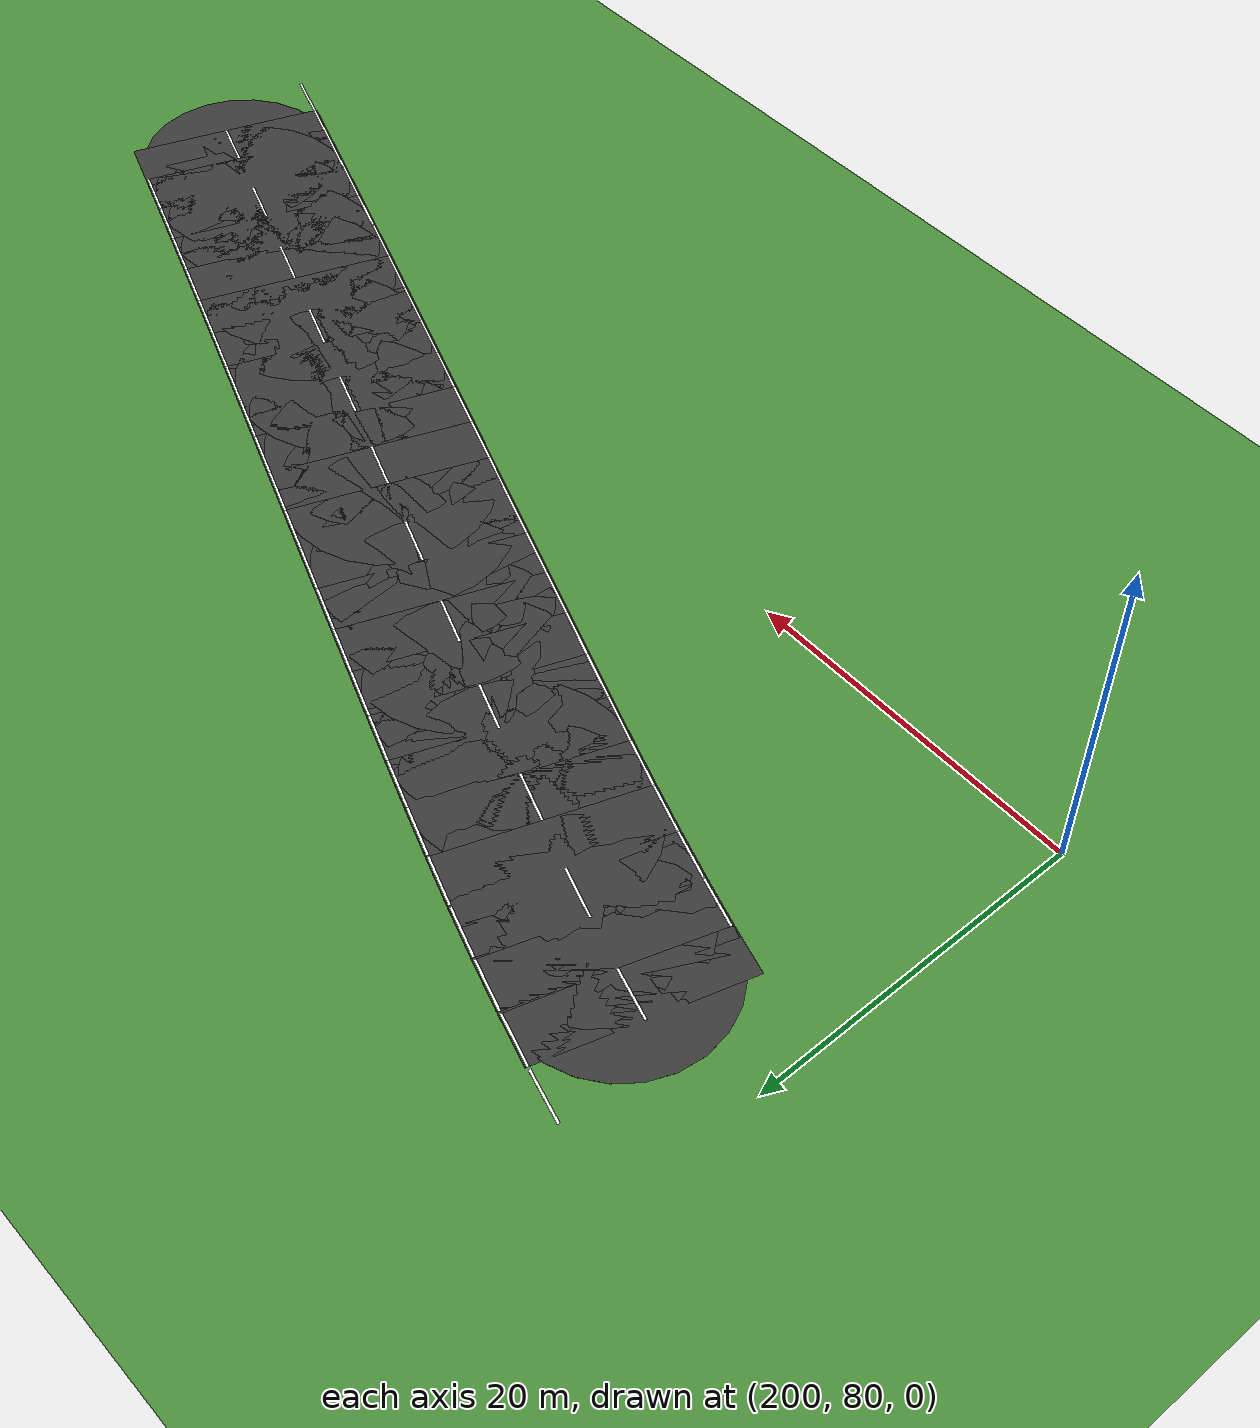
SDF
<sdf version="1.6">
 <world name="sem_silesia_ring_2026">
  <model name="ground_plane">
   <static>true</static>
   <link name="link">
    <collision name="collision">
     <geometry><plane><normal>0 0 1</normal><size>1200 1200</size></plane></geometry>
     <surface><friction><ode><mu>0.6</mu><mu2>0.6</mu2></ode></friction></surface>
    </collision>
    <visual name="visual">
     <geometry><plane><normal>0 0 1</normal><size>1200 1200</size></plane></geometry>
     <material><ambient>0.28 0.55 0.22 1</ambient><diffuse>0.28 0.55 0.22 1</diffuse></material>
    </visual>
   </link>
  </model>
  <model name="wl_L_s95">
   <static>true</static>
   <pose>206.1516 107.2972 0.0070 0 0 -0.2600</pose>
   <link name="link">
    <visual name="v">
     <geometry><box><size>3.0025 0.1500 0.0080</size></box></geometry>
     <material><ambient>0.95 0.95 0.95 1</ambient><diffuse>0.95 0.95 0.95 1</diffuse></material>
    </visual>
   </link>
  </model>
  <model name="road_s96">
   <static>true</static>
   <pose>207.5403 100.8396 0.0030 0 0 -0.2824</pose>
   <link name="link">
    <visual name="v">
     <geometry><box><size>3.0025 12.0000 0.0060</size></box></geometry>
     <material><ambient>0.22 0.22 0.22 1</ambient><diffuse>0.22 0.22 0.22 1</diffuse></material>
    </visual>
    <collision name="c">
     <geometry><box><size>3.0025 12.0000 0.0060</size></box></geometry>
     <surface><friction><ode><mu>0.9</mu><mu2>0.9</mu2></ode></friction></surface>
    </collision>
   </link>
  </model>
  <model name="wl_L_s96">
   <static>true</static>
   <pose>209.1703 106.4579 0.0070 0 0 -0.2824</pose>
   <link name="link">
    <visual name="v">
     <geometry><box><size>3.0025 0.1500 0.0080</size></box></geometry>
     <material><ambient>0.95 0.95 0.95 1</ambient><diffuse>0.95 0.95 0.95 1</diffuse></material>
    </visual>
   </link>
  </model>
  <model name="cd_s96">
   <static>true</static>
   <pose>207.5403 100.8396 0.0070 0 0 -0.2824</pose>
   <link name="link">
    <visual name="v">
     <geometry><box><size>3.0025 0.1500 0.0080</size></box></geometry>
     <material><ambient>0.95 0.95 0.95 1</ambient><diffuse>0.95 0.95 0.95 1</diffuse></material>
    </visual>
   </link>
  </model>
  <model name="road_s97">
   <static>true</static>
   <pose>210.4154 99.9749 0.0030 0 0 -0.3019</pose>
   <link name="link">
    <visual name="v">
     <geometry><box><size>3.0025 12.0000 0.0060</size></box></geometry>
     <material><ambient>0.22 0.22 0.22 1</ambient><diffuse>0.22 0.22 0.22 1</diffuse></material>
    </visual>
    <collision name="c">
     <geometry><box><size>3.0025 12.0000 0.0060</size></box></geometry>
     <surface><friction><ode><mu>0.9</mu><mu2>0.9</mu2></ode></friction></surface>
    </collision>
   </link>
  </model>
  <model name="road_jnt97">
   <static>true</static>
   <pose>208.9821 100.4213 0.0030 0 0 0</pose>
   <link name="link">
    <visual name="v">
     <geometry><cylinder><radius>6.0000</radius><length>0.0060</length></cylinder></geometry>
     <material><ambient>0.22 0.22 0.22 1</ambient><diffuse>0.22 0.22 0.22 1</diffuse></material>
    </visual>
    <collision name="c">
     <geometry><cylinder><radius>6.0000</radius><length>0.0060</length></cylinder></geometry>
     <surface><friction><ode><mu>0.9</mu><mu2>0.9</mu2></ode></friction></surface>
    </collision>
   </link>
  </model>
  <model name="wl_L_s97">
   <static>true</static>
   <pose>212.1547 105.5604 0.0070 0 0 -0.3019</pose>
   <link name="link">
    <visual name="v">
     <geometry><box><size>3.0025 0.1500 0.0080</size></box></geometry>
     <material><ambient>0.95 0.95 0.95 1</ambient><diffuse>0.95 0.95 0.95 1</diffuse></material>
    </visual>
   </link>
  </model>
  <model name="wl_R_s97">
   <static>true</static>
   <pose>208.6762 94.3894 0.0070 0 0 -0.3019</pose>
   <link name="link">
    <visual name="v">
     <geometry><box><size>3.0025 0.1500 0.0080</size></box></geometry>
     <material><ambient>0.95 0.95 0.95 1</ambient><diffuse>0.95 0.95 0.95 1</diffuse></material>
    </visual>
   </link>
  </model>
  <model name="road_s98">
   <static>true</static>
   <pose>213.2746 99.0587 0.0030 0 0 -0.3183</pose>
   <link name="link">
    <visual name="v">
     <geometry><box><size>3.0025 12.0000 0.0060</size></box></geometry>
     <material><ambient>0.22 0.22 0.22 1</ambient><diffuse>0.22 0.22 0.22 1</diffuse></material>
    </visual>
    <collision name="c">
     <geometry><box><size>3.0025 12.0000 0.0060</size></box></geometry>
     <surface><friction><ode><mu>0.9</mu><mu2>0.9</mu2></ode></friction></surface>
    </collision>
   </link>
  </model>
  <model name="road_jnt98">
   <static>true</static>
   <pose>211.8488 99.5286 0.0030 0 0 0</pose>
   <link name="link">
    <visual name="v">
     <geometry><cylinder><radius>6.0000</radius><length>0.0060</length></cylinder></geometry>
     <material><ambient>0.22 0.22 0.22 1</ambient><diffuse>0.22 0.22 0.22 1</diffuse></material>
    </visual>
    <collision name="c">
     <geometry><cylinder><radius>6.0000</radius><length>0.0060</length></cylinder></geometry>
     <surface><friction><ode><mu>0.9</mu><mu2>0.9</mu2></ode></friction></surface>
    </collision>
   </link>
  </model>
  <model name="wl_L_s98">
   <static>true</static>
   <pose>215.1056 104.6148 0.0070 0 0 -0.3183</pose>
   <link name="link">
    <visual name="v">
     <geometry><box><size>3.0025 0.1500 0.0080</size></box></geometry>
     <material><ambient>0.95 0.95 0.95 1</ambient><diffuse>0.95 0.95 0.95 1</diffuse></material>
    </visual>
   </link>
  </model>
  <model name="wl_R_s98">
   <static>true</static>
   <pose>211.4436 93.5026 0.0070 0 0 -0.3183</pose>
   <link name="link">
    <visual name="v">
     <geometry><box><size>3.0025 0.1500 0.0080</size></box></geometry>
     <material><ambient>0.95 0.95 0.95 1</ambient><diffuse>0.95 0.95 0.95 1</diffuse></material>
    </visual>
   </link>
  </model>
  <model name="cd_s98">
   <static>true</static>
   <pose>213.2746 99.0587 0.0070 0 0 -0.3183</pose>
   <link name="link">
    <visual name="v">
     <geometry><box><size>3.0025 0.1500 0.0080</size></box></geometry>
     <material><ambient>0.95 0.95 0.95 1</ambient><diffuse>0.95 0.95 0.95 1</diffuse></material>
    </visual>
   </link>
  </model>
  <model name="road_s99">
   <static>true</static>
   <pose>216.1199 98.1000 0.0030 0 0 -0.3317</pose>
   <link name="link">
    <visual name="v">
     <geometry><box><size>3.0025 12.0000 0.0060</size></box></geometry>
     <material><ambient>0.22 0.22 0.22 1</ambient><diffuse>0.22 0.22 0.22 1</diffuse></material>
    </visual>
    <collision name="c">
     <geometry><box><size>3.0025 12.0000 0.0060</size></box></geometry>
     <surface><friction><ode><mu>0.9</mu><mu2>0.9</mu2></ode></friction></surface>
    </collision>
   </link>
  </model>
  <model name="road_jnt99">
   <static>true</static>
   <pose>214.7004 98.5888 0.0030 0 0 0</pose>
   <link name="link">
    <visual name="v">
     <geometry><cylinder><radius>6.0000</radius><length>0.0060</length></cylinder></geometry>
     <material><ambient>0.22 0.22 0.22 1</ambient><diffuse>0.22 0.22 0.22 1</diffuse></material>
    </visual>
    <collision name="c">
     <geometry><cylinder><radius>6.0000</radius><length>0.0060</length></cylinder></geometry>
     <surface><friction><ode><mu>0.9</mu><mu2>0.9</mu2></ode></friction></surface>
    </collision>
   </link>
  </model>
  <model name="wl_L_s99">
   <static>true</static>
   <pose>218.0248 103.6311 0.0070 0 0 -0.3317</pose>
   <link name="link">
    <visual name="v">
     <geometry><box><size>3.0025 0.1500 0.0080</size></box></geometry>
     <material><ambient>0.95 0.95 0.95 1</ambient><diffuse>0.95 0.95 0.95 1</diffuse></material>
    </visual>
   </link>
  </model>
  <model name="wl_R_s99">
   <static>true</static>
   <pose>214.2149 92.5688 0.0070 0 0 -0.3317</pose>
   <link name="link">
    <visual name="v">
     <geometry><box><size>3.0025 0.1500 0.0080</size></box></geometry>
     <material><ambient>0.95 0.95 0.95 1</ambient><diffuse>0.95 0.95 0.95 1</diffuse></material>
    </visual>
   </link>
  </model>
  <model name="road_s100">
   <static>true</static>
   <pose>218.9537 97.1079 0.0030 0 0 -0.3418</pose>
   <link name="link">
    <visual name="v">
     <geometry><box><size>3.0025 12.0000 0.0060</size></box></geometry>
     <material><ambient>0.22 0.22 0.22 1</ambient><diffuse>0.22 0.22 0.22 1</diffuse></material>
    </visual>
    <collision name="c">
     <geometry><box><size>3.0025 12.0000 0.0060</size></box></geometry>
     <surface><friction><ode><mu>0.9</mu><mu2>0.9</mu2></ode></friction></surface>
    </collision>
   </link>
  </model>
  <model name="road_jnt100">
   <static>true</static>
   <pose>217.5393 97.6111 0.0030 0 0 0</pose>
   <link name="link">
    <visual name="v">
     <geometry><cylinder><radius>6.0000</radius><length>0.0060</length></cylinder></geometry>
     <material><ambient>0.22 0.22 0.22 1</ambient><diffuse>0.22 0.22 0.22 1</diffuse></material>
    </visual>
    <collision name="c">
     <geometry><cylinder><radius>6.0000</radius><length>0.0060</length></cylinder></geometry>
     <surface><friction><ode><mu>0.9</mu><mu2>0.9</mu2></ode></friction></surface>
    </collision>
   </link>
  </model>
  <model name="wl_L_s100">
   <static>true</static>
   <pose>220.9147 102.6194 0.0070 0 0 -0.3418</pose>
   <link name="link">
    <visual name="v">
     <geometry><box><size>3.0025 0.1500 0.0080</size></box></geometry>
     <material><ambient>0.95 0.95 0.95 1</ambient><diffuse>0.95 0.95 0.95 1</diffuse></material>
    </visual>
   </link>
  </model>
  <model name="wl_R_s100">
   <static>true</static>
   <pose>216.9927 91.5964 0.0070 0 0 -0.3418</pose>
   <link name="link">
    <visual name="v">
     <geometry><box><size>3.0025 0.1500 0.0080</size></box></geometry>
     <material><ambient>0.95 0.95 0.95 1</ambient><diffuse>0.95 0.95 0.95 1</diffuse></material>
    </visual>
   </link>
  </model>
  <model name="cd_s100">
   <static>true</static>
   <pose>218.9537 97.1079 0.0070 0 0 -0.3418</pose>
   <link name="link">
    <visual name="v">
     <geometry><box><size>3.0025 0.1500 0.0080</size></box></geometry>
     <material><ambient>0.95 0.95 0.95 1</ambient><diffuse>0.95 0.95 0.95 1</diffuse></material>
    </visual>
   </link>
  </model>
  <model name="road_s101">
   <static>true</static>
   <pose>221.7790 96.0916 0.0030 0 0 -0.3488</pose>
   <link name="link">
    <visual name="v">
     <geometry><box><size>3.0025 12.0000 0.0060</size></box></geometry>
     <material><ambient>0.22 0.22 0.22 1</ambient><diffuse>0.22 0.22 0.22 1</diffuse></material>
    </visual>
    <collision name="c">
     <geometry><box><size>3.0025 12.0000 0.0060</size></box></geometry>
     <surface><friction><ode><mu>0.9</mu><mu2>0.9</mu2></ode></friction></surface>
    </collision>
   </link>
  </model>
  <model name="road_jnt101">
   <static>true</static>
   <pose>220.3681 96.6047 0.0030 0 0 0</pose>
   <link name="link">
    <visual name="v">
     <geometry><cylinder><radius>6.0000</radius><length>0.0060</length></cylinder></geometry>
     <material><ambient>0.22 0.22 0.22 1</ambient><diffuse>0.22 0.22 0.22 1</diffuse></material>
    </visual>
    <collision name="c">
     <geometry><cylinder><radius>6.0000</radius><length>0.0060</length></cylinder></geometry>
     <surface><friction><ode><mu>0.9</mu><mu2>0.9</mu2></ode></friction></surface>
    </collision>
   </link>
  </model>
  <model name="wl_L_s101">
   <static>true</static>
   <pose>223.7781 101.5894 0.0070 0 0 -0.3488</pose>
   <link name="link">
    <visual name="v">
     <geometry><box><size>3.0025 0.1500 0.0080</size></box></geometry>
     <material><ambient>0.95 0.95 0.95 1</ambient><diffuse>0.95 0.95 0.95 1</diffuse></material>
    </visual>
   </link>
  </model>
  <model name="wl_R_s101">
   <static>true</static>
   <pose>219.7799 90.5938 0.0070 0 0 -0.3488</pose>
   <link name="link">
    <visual name="v">
     <geometry><box><size>3.0025 0.1500 0.0080</size></box></geometry>
     <material><ambient>0.95 0.95 0.95 1</ambient><diffuse>0.95 0.95 0.95 1</diffuse></material>
    </visual>
   </link>
  </model>
  <model name="road_s102">
   <static>true</static>
   <pose>224.5989 95.0603 0.0030 0 0 -0.3525</pose>
   <link name="link">
    <visual name="v">
     <geometry><box><size>3.0025 12.0000 0.0060</size></box></geometry>
     <material><ambient>0.22 0.22 0.22 1</ambient><diffuse>0.22 0.22 0.22 1</diffuse></material>
    </visual>
    <collision name="c">
     <geometry><box><size>3.0025 12.0000 0.0060</size></box></geometry>
     <surface><friction><ode><mu>0.9</mu><mu2>0.9</mu2></ode></friction></surface>
    </collision>
   </link>
  </model>
  <model name="road_jnt102">
   <static>true</static>
   <pose>223.1899 95.5786 0.0030 0 0 0</pose>
   <link name="link">
    <visual name="v">
     <geometry><cylinder><radius>6.0000</radius><length>0.0060</length></cylinder></geometry>
     <material><ambient>0.22 0.22 0.22 1</ambient><diffuse>0.22 0.22 0.22 1</diffuse></material>
    </visual>
    <collision name="c">
     <geometry><cylinder><radius>6.0000</radius><length>0.0060</length></cylinder></geometry>
     <surface><friction><ode><mu>0.9</mu><mu2>0.9</mu2></ode></friction></surface>
    </collision>
   </link>
  </model>
  <model name="wl_L_s102">
   <static>true</static>
   <pose>226.6184 100.5507 0.0070 0 0 -0.3525</pose>
   <link name="link">
    <visual name="v">
     <geometry><box><size>3.0025 0.1500 0.0080</size></box></geometry>
     <material><ambient>0.95 0.95 0.95 1</ambient><diffuse>0.95 0.95 0.95 1</diffuse></material>
    </visual>
   </link>
  </model>
  <model name="wl_R_s102">
   <static>true</static>
   <pose>222.5794 89.5700 0.0070 0 0 -0.3525</pose>
   <link name="link">
    <visual name="v">
     <geometry><box><size>3.0025 0.1500 0.0080</size></box></geometry>
     <material><ambient>0.95 0.95 0.95 1</ambient><diffuse>0.95 0.95 0.95 1</diffuse></material>
    </visual>
   </link>
  </model>
  <model name="cd_s102">
   <static>true</static>
   <pose>224.5989 95.0603 0.0070 0 0 -0.3525</pose>
   <link name="link">
    <visual name="v">
     <geometry><box><size>3.0025 0.1500 0.0080</size></box></geometry>
     <material><ambient>0.95 0.95 0.95 1</ambient><diffuse>0.95 0.95 0.95 1</diffuse></material>
    </visual>
   </link>
  </model>
  <model name="road_s103">
   <static>true</static>
   <pose>227.4161 94.0218 0.0030 0 0 -0.3539</pose>
   <link name="link">
    <visual name="v">
     <geometry><box><size>3.0025 12.0000 0.0060</size></box></geometry>
     <material><ambient>0.22 0.22 0.22 1</ambient><diffuse>0.22 0.22 0.22 1</diffuse></material>
    </visual>
    <collision name="c">
     <geometry><box><size>3.0025 12.0000 0.0060</size></box></geometry>
     <surface><friction><ode><mu>0.9</mu><mu2>0.9</mu2></ode></friction></surface>
    </collision>
   </link>
  </model>
  <model name="road_jnt103">
   <static>true</static>
   <pose>226.0078 94.5421 0.0030 0 0 0</pose>
   <link name="link">
    <visual name="v">
     <geometry><cylinder><radius>6.0000</radius><length>0.0060</length></cylinder></geometry>
     <material><ambient>0.22 0.22 0.22 1</ambient><diffuse>0.22 0.22 0.22 1</diffuse></material>
    </visual>
    <collision name="c">
     <geometry><cylinder><radius>6.0000</radius><length>0.0060</length></cylinder></geometry>
     <surface><friction><ode><mu>0.9</mu><mu2>0.9</mu2></ode></friction></surface>
    </collision>
   </link>
  </model>
  <model name="wl_L_s103">
   <static>true</static>
   <pose>229.4434 99.5093 0.0070 0 0 -0.3539</pose>
   <link name="link">
    <visual name="v">
     <geometry><box><size>3.0025 0.1500 0.0080</size></box></geometry>
     <material><ambient>0.95 0.95 0.95 1</ambient><diffuse>0.95 0.95 0.95 1</diffuse></material>
    </visual>
   </link>
  </model>
  <model name="wl_R_s103">
   <static>true</static>
   <pose>225.3887 88.5343 0.0070 0 0 -0.3539</pose>
   <link name="link">
    <visual name="v">
     <geometry><box><size>3.0025 0.1500 0.0080</size></box></geometry>
     <material><ambient>0.95 0.95 0.95 1</ambient><diffuse>0.95 0.95 0.95 1</diffuse></material>
    </visual>
   </link>
  </model>
  <model name="road_s104">
   <static>true</static>
   <pose>230.2320 92.9799 0.0030 0 0 -0.3549</pose>
   <link name="link">
    <visual name="v">
     <geometry><box><size>3.0025 12.0000 0.0060</size></box></geometry>
     <material><ambient>0.22 0.22 0.22 1</ambient><diffuse>0.22 0.22 0.22 1</diffuse></material>
    </visual>
    <collision name="c">
     <geometry><box><size>3.0025 12.0000 0.0060</size></box></geometry>
     <surface><friction><ode><mu>0.9</mu><mu2>0.9</mu2></ode></friction></surface>
    </collision>
   </link>
  </model>
  <model name="road_jnt104">
   <static>true</static>
   <pose>228.8243 93.5015 0.0030 0 0 0</pose>
   <link name="link">
    <visual name="v">
     <geometry><cylinder><radius>6.0000</radius><length>0.0060</length></cylinder></geometry>
     <material><ambient>0.22 0.22 0.22 1</ambient><diffuse>0.22 0.22 0.22 1</diffuse></material>
    </visual>
    <collision name="c">
     <geometry><cylinder><radius>6.0000</radius><length>0.0060</length></cylinder></geometry>
     <surface><friction><ode><mu>0.9</mu><mu2>0.9</mu2></ode></friction></surface>
    </collision>
   </link>
  </model>
  <model name="wl_L_s104">
   <static>true</static>
   <pose>232.2647 98.4654 0.0070 0 0 -0.3549</pose>
   <link name="link">
    <visual name="v">
     <geometry><box><size>3.0025 0.1500 0.0080</size></box></geometry>
     <material><ambient>0.95 0.95 0.95 1</ambient><diffuse>0.95 0.95 0.95 1</diffuse></material>
    </visual>
   </link>
  </model>
  <model name="wl_R_s104">
   <static>true</static>
   <pose>228.1994 87.4944 0.0070 0 0 -0.3549</pose>
   <link name="link">
    <visual name="v">
     <geometry><box><size>3.0025 0.1500 0.0080</size></box></geometry>
     <material><ambient>0.95 0.95 0.95 1</ambient><diffuse>0.95 0.95 0.95 1</diffuse></material>
    </visual>
   </link>
  </model>
  <model name="cd_s104">
   <static>true</static>
   <pose>230.2320 92.9799 0.0070 0 0 -0.3549</pose>
   <link name="link">
    <visual name="v">
     <geometry><box><size>3.0025 0.1500 0.0080</size></box></geometry>
     <material><ambient>0.95 0.95 0.95 1</ambient><diffuse>0.95 0.95 0.95 1</diffuse></material>
    </visual>
   </link>
  </model>
  <model name="road_s105">
   <static>true</static>
   <pose>233.0471 91.9356 0.0030 0 0 -0.3556</pose>
   <link name="link">
    <visual name="v">
     <geometry><box><size>3.0025 12.0000 0.0060</size></box></geometry>
     <material><ambient>0.22 0.22 0.22 1</ambient><diffuse>0.22 0.22 0.22 1</diffuse></material>
    </visual>
    <collision name="c">
     <geometry><box><size>3.0025 12.0000 0.0060</size></box></geometry>
     <surface><friction><ode><mu>0.9</mu><mu2>0.9</mu2></ode></friction></surface>
    </collision>
   </link>
  </model>
  <model name="road_jnt105">
   <static>true</static>
   <pose>231.6398 92.4583 0.0030 0 0 0</pose>
   <link name="link">
    <visual name="v">
     <geometry><cylinder><radius>6.0000</radius><length>0.0060</length></cylinder></geometry>
     <material><ambient>0.22 0.22 0.22 1</ambient><diffuse>0.22 0.22 0.22 1</diffuse></material>
    </visual>
    <collision name="c">
     <geometry><cylinder><radius>6.0000</radius><length>0.0060</length></cylinder></geometry>
     <surface><friction><ode><mu>0.9</mu><mu2>0.9</mu2></ode></friction></surface>
    </collision>
   </link>
  </model>
  <model name="wl_L_s105">
   <static>true</static>
   <pose>235.0837 97.4197 0.0070 0 0 -0.3556</pose>
   <link name="link">
    <visual name="v">
     <geometry><box><size>3.0025 0.1500 0.0080</size></box></geometry>
     <material><ambient>0.95 0.95 0.95 1</ambient><diffuse>0.95 0.95 0.95 1</diffuse></material>
    </visual>
   </link>
  </model>
  <model name="wl_R_s105">
   <static>true</static>
   <pose>231.0106 86.4516 0.0070 0 0 -0.3556</pose>
   <link name="link">
    <visual name="v">
     <geometry><box><size>3.0025 0.1500 0.0080</size></box></geometry>
     <material><ambient>0.95 0.95 0.95 1</ambient><diffuse>0.95 0.95 0.95 1</diffuse></material>
    </visual>
   </link>
  </model>
  <model name="road_s106">
   <static>true</static>
   <pose>235.8616 90.8897 0.0030 0 0 -0.3560</pose>
   <link name="link">
    <visual name="v">
     <geometry><box><size>3.0025 12.0000 0.0060</size></box></geometry>
     <material><ambient>0.22 0.22 0.22 1</ambient><diffuse>0.22 0.22 0.22 1</diffuse></material>
    </visual>
    <collision name="c">
     <geometry><box><size>3.0025 12.0000 0.0060</size></box></geometry>
     <surface><friction><ode><mu>0.9</mu><mu2>0.9</mu2></ode></friction></surface>
    </collision>
   </link>
  </model>
  <model name="road_jnt106">
   <static>true</static>
   <pose>234.4545 91.4130 0.0030 0 0 0</pose>
   <link name="link">
    <visual name="v">
     <geometry><cylinder><radius>6.0000</radius><length>0.0060</length></cylinder></geometry>
     <material><ambient>0.22 0.22 0.22 1</ambient><diffuse>0.22 0.22 0.22 1</diffuse></material>
    </visual>
    <collision name="c">
     <geometry><cylinder><radius>6.0000</radius><length>0.0060</length></cylinder></geometry>
     <surface><friction><ode><mu>0.9</mu><mu2>0.9</mu2></ode></friction></surface>
    </collision>
   </link>
  </model>
  <model name="wl_L_s106">
   <static>true</static>
   <pose>237.9007 96.3728 0.0070 0 0 -0.3560</pose>
   <link name="link">
    <visual name="v">
     <geometry><box><size>3.0025 0.1500 0.0080</size></box></geometry>
     <material><ambient>0.95 0.95 0.95 1</ambient><diffuse>0.95 0.95 0.95 1</diffuse></material>
    </visual>
   </link>
  </model>
  <model name="wl_R_s106">
   <static>true</static>
   <pose>233.8225 85.4066 0.0070 0 0 -0.3560</pose>
   <link name="link">
    <visual name="v">
     <geometry><box><size>3.0025 0.1500 0.0080</size></box></geometry>
     <material><ambient>0.95 0.95 0.95 1</ambient><diffuse>0.95 0.95 0.95 1</diffuse></material>
    </visual>
   </link>
  </model>
  <model name="cd_s106">
   <static>true</static>
   <pose>235.8616 90.8897 0.0070 0 0 -0.3560</pose>
   <link name="link">
    <visual name="v">
     <geometry><box><size>3.0025 0.1500 0.0080</size></box></geometry>
     <material><ambient>0.95 0.95 0.95 1</ambient><diffuse>0.95 0.95 0.95 1</diffuse></material>
    </visual>
   </link>
  </model>
  <model name="road_s107">
   <static>true</static>
   <pose>238.6757 89.8428 0.0030 0 0 -0.3563</pose>
   <link name="link">
    <visual name="v">
     <geometry><box><size>3.0025 12.0000 0.0060</size></box></geometry>
     <material><ambient>0.22 0.22 0.22 1</ambient><diffuse>0.22 0.22 0.22 1</diffuse></material>
    </visual>
    <collision name="c">
     <geometry><box><size>3.0025 12.0000 0.0060</size></box></geometry>
     <surface><friction><ode><mu>0.9</mu><mu2>0.9</mu2></ode></friction></surface>
    </collision>
   </link>
  </model>
  <model name="road_jnt107">
   <static>true</static>
   <pose>237.2687 90.3664 0.0030 0 0 0</pose>
   <link name="link">
    <visual name="v">
     <geometry><cylinder><radius>6.0000</radius><length>0.0060</length></cylinder></geometry>
     <material><ambient>0.22 0.22 0.22 1</ambient><diffuse>0.22 0.22 0.22 1</diffuse></material>
    </visual>
    <collision name="c">
     <geometry><cylinder><radius>6.0000</radius><length>0.0060</length></cylinder></geometry>
     <surface><friction><ode><mu>0.9</mu><mu2>0.9</mu2></ode></friction></surface>
    </collision>
   </link>
  </model>
  <model name="wl_L_s107">
   <static>true</static>
   <pose>240.7160 95.3255 0.0070 0 0 -0.3563</pose>
   <link name="link">
    <visual name="v">
     <geometry><box><size>3.0025 0.1500 0.0080</size></box></geometry>
     <material><ambient>0.95 0.95 0.95 1</ambient><diffuse>0.95 0.95 0.95 1</diffuse></material>
    </visual>
   </link>
  </model>
  <model name="wl_R_s107">
   <static>true</static>
   <pose>236.6354 84.3602 0.0070 0 0 -0.3563</pose>
   <link name="link">
    <visual name="v">
     <geometry><box><size>3.0025 0.1500 0.0080</size></box></geometry>
     <material><ambient>0.95 0.95 0.95 1</ambient><diffuse>0.95 0.95 0.95 1</diffuse></material>
    </visual>
   </link>
  </model>
  <model name="road_s108">
   <static>true</static>
   <pose>241.4898 88.7957 0.0030 0 0 -0.3562</pose>
   <link name="link">
    <visual name="v">
     <geometry><box><size>3.0025 12.0000 0.0060</size></box></geometry>
     <material><ambient>0.22 0.22 0.22 1</ambient><diffuse>0.22 0.22 0.22 1</diffuse></material>
    </visual>
    <collision name="c">
     <geometry><box><size>3.0025 12.0000 0.0060</size></box></geometry>
     <surface><friction><ode><mu>0.9</mu><mu2>0.9</mu2></ode></friction></surface>
    </collision>
   </link>
  </model>
  <model name="road_jnt108">
   <static>true</static>
   <pose>240.0827 89.3192 0.0030 0 0 0</pose>
   <link name="link">
    <visual name="v">
     <geometry><cylinder><radius>6.0000</radius><length>0.0060</length></cylinder></geometry>
     <material><ambient>0.22 0.22 0.22 1</ambient><diffuse>0.22 0.22 0.22 1</diffuse></material>
    </visual>
    <collision name="c">
     <geometry><cylinder><radius>6.0000</radius><length>0.0060</length></cylinder></geometry>
     <surface><friction><ode><mu>0.9</mu><mu2>0.9</mu2></ode></friction></surface>
    </collision>
   </link>
  </model>
  <model name="wl_L_s108">
   <static>true</static>
   <pose>243.5299 94.2784 0.0070 0 0 -0.3562</pose>
   <link name="link">
    <visual name="v">
     <geometry><box><size>3.0025 0.1500 0.0080</size></box></geometry>
     <material><ambient>0.95 0.95 0.95 1</ambient><diffuse>0.95 0.95 0.95 1</diffuse></material>
    </visual>
   </link>
  </model>
  <model name="wl_R_s108">
   <static>true</static>
   <pose>239.4496 83.3130 0.0070 0 0 -0.3562</pose>
   <link name="link">
    <visual name="v">
     <geometry><box><size>3.0025 0.1500 0.0080</size></box></geometry>
     <material><ambient>0.95 0.95 0.95 1</ambient><diffuse>0.95 0.95 0.95 1</diffuse></material>
    </visual>
   </link>
  </model>
  <model name="cd_s108">
   <static>true</static>
   <pose>241.4898 88.7957 0.0070 0 0 -0.3562</pose>
   <link name="link">
    <visual name="v">
     <geometry><box><size>3.0025 0.1500 0.0080</size></box></geometry>
     <material><ambient>0.95 0.95 0.95 1</ambient><diffuse>0.95 0.95 0.95 1</diffuse></material>
    </visual>
   </link>
  </model>
  <model name="road_s109">
   <static>true</static>
   <pose>244.3039 87.7489 0.0030 0 0 -0.3560</pose>
   <link name="link">
    <visual name="v">
     <geometry><box><size>3.0025 12.0000 0.0060</size></box></geometry>
     <material><ambient>0.22 0.22 0.22 1</ambient><diffuse>0.22 0.22 0.22 1</diffuse></material>
    </visual>
    <collision name="c">
     <geometry><box><size>3.0025 12.0000 0.0060</size></box></geometry>
     <surface><friction><ode><mu>0.9</mu><mu2>0.9</mu2></ode></friction></surface>
    </collision>
   </link>
  </model>
  <model name="road_jnt109">
   <static>true</static>
   <pose>242.8968 88.2721 0.0030 0 0 0</pose>
   <link name="link">
    <visual name="v">
     <geometry><cylinder><radius>6.0000</radius><length>0.0060</length></cylinder></geometry>
     <material><ambient>0.22 0.22 0.22 1</ambient><diffuse>0.22 0.22 0.22 1</diffuse></material>
    </visual>
    <collision name="c">
     <geometry><cylinder><radius>6.0000</radius><length>0.0060</length></cylinder></geometry>
     <surface><friction><ode><mu>0.9</mu><mu2>0.9</mu2></ode></friction></surface>
    </collision>
   </link>
  </model>
  <model name="wl_L_s109">
   <static>true</static>
   <pose>246.3426 93.2322 0.0070 0 0 -0.3560</pose>
   <link name="link">
    <visual name="v">
     <geometry><box><size>3.0025 0.1500 0.0080</size></box></geometry>
     <material><ambient>0.95 0.95 0.95 1</ambient><diffuse>0.95 0.95 0.95 1</diffuse></material>
    </visual>
   </link>
  </model>
  <model name="wl_R_s109">
   <static>true</static>
   <pose>242.2652 82.2657 0.0070 0 0 -0.3560</pose>
   <link name="link">
    <visual name="v">
     <geometry><box><size>3.0025 0.1500 0.0080</size></box></geometry>
     <material><ambient>0.95 0.95 0.95 1</ambient><diffuse>0.95 0.95 0.95 1</diffuse></material>
    </visual>
   </link>
  </model>
  <model name="road_s110">
   <static>true</static>
   <pose>247.1185 86.7033 0.0030 0 0 -0.3555</pose>
   <link name="link">
    <visual name="v">
     <geometry><box><size>3.0025 12.0000 0.0060</size></box></geometry>
     <material><ambient>0.22 0.22 0.22 1</ambient><diffuse>0.22 0.22 0.22 1</diffuse></material>
    </visual>
    <collision name="c">
     <geometry><box><size>3.0025 12.0000 0.0060</size></box></geometry>
     <surface><friction><ode><mu>0.9</mu><mu2>0.9</mu2></ode></friction></surface>
    </collision>
   </link>
  </model>
  <model name="road_jnt110">
   <static>true</static>
   <pose>245.7111 87.2257 0.0030 0 0 0</pose>
   <link name="link">
    <visual name="v">
     <geometry><cylinder><radius>6.0000</radius><length>0.0060</length></cylinder></geometry>
     <material><ambient>0.22 0.22 0.22 1</ambient><diffuse>0.22 0.22 0.22 1</diffuse></material>
    </visual>
    <collision name="c">
     <geometry><cylinder><radius>6.0000</radius><length>0.0060</length></cylinder></geometry>
     <surface><friction><ode><mu>0.9</mu><mu2>0.9</mu2></ode></friction></surface>
    </collision>
   </link>
  </model>
  <model name="wl_L_s110">
   <static>true</static>
   <pose>249.1544 92.1876 0.0070 0 0 -0.3555</pose>
   <link name="link">
    <visual name="v">
     <geometry><box><size>3.0025 0.1500 0.0080</size></box></geometry>
     <material><ambient>0.95 0.95 0.95 1</ambient><diffuse>0.95 0.95 0.95 1</diffuse></material>
    </visual>
   </link>
  </model>
  <model name="wl_R_s110">
   <static>true</static>
   <pose>245.0826 81.2190 0.0070 0 0 -0.3555</pose>
   <link name="link">
    <visual name="v">
     <geometry><box><size>3.0025 0.1500 0.0080</size></box></geometry>
     <material><ambient>0.95 0.95 0.95 1</ambient><diffuse>0.95 0.95 0.95 1</diffuse></material>
    </visual>
   </link>
  </model>
  <model name="cd_s110">
   <static>true</static>
   <pose>247.1185 86.7033 0.0070 0 0 -0.3555</pose>
   <link name="link">
    <visual name="v">
     <geometry><box><size>3.0025 0.1500 0.0080</size></box></geometry>
     <material><ambient>0.95 0.95 0.95 1</ambient><diffuse>0.95 0.95 0.95 1</diffuse></material>
    </visual>
   </link>
  </model>
  <model name="road_s111">
   <static>true</static>
   <pose>249.9337 85.6594 0.0030 0 0 -0.3547</pose>
   <link name="link">
    <visual name="v">
     <geometry><box><size>3.0025 12.0000 0.0060</size></box></geometry>
     <material><ambient>0.22 0.22 0.22 1</ambient><diffuse>0.22 0.22 0.22 1</diffuse></material>
    </visual>
    <collision name="c">
     <geometry><box><size>3.0025 12.0000 0.0060</size></box></geometry>
     <surface><friction><ode><mu>0.9</mu><mu2>0.9</mu2></ode></friction></surface>
    </collision>
   </link>
  </model>
  <model name="road_jnt111">
   <static>true</static>
   <pose>248.5259 86.1808 0.0030 0 0 0</pose>
   <link name="link">
    <visual name="v">
     <geometry><cylinder><radius>6.0000</radius><length>0.0060</length></cylinder></geometry>
     <material><ambient>0.22 0.22 0.22 1</ambient><diffuse>0.22 0.22 0.22 1</diffuse></material>
    </visual>
    <collision name="c">
     <geometry><cylinder><radius>6.0000</radius><length>0.0060</length></cylinder></geometry>
     <surface><friction><ode><mu>0.9</mu><mu2>0.9</mu2></ode></friction></surface>
    </collision>
   </link>
  </model>
  <model name="wl_L_s111">
   <static>true</static>
   <pose>251.9655 91.1452 0.0070 0 0 -0.3547</pose>
   <link name="link">
    <visual name="v">
     <geometry><box><size>3.0025 0.1500 0.0080</size></box></geometry>
     <material><ambient>0.95 0.95 0.95 1</ambient><diffuse>0.95 0.95 0.95 1</diffuse></material>
    </visual>
   </link>
  </model>
  <model name="wl_R_s111">
   <static>true</static>
   <pose>247.9020 80.1735 0.0070 0 0 -0.3547</pose>
   <link name="link">
    <visual name="v">
     <geometry><box><size>3.0025 0.1500 0.0080</size></box></geometry>
     <material><ambient>0.95 0.95 0.95 1</ambient><diffuse>0.95 0.95 0.95 1</diffuse></material>
    </visual>
   </link>
  </model>
  <model name="road_s112">
   <static>true</static>
   <pose>252.7499 84.6180 0.0030 0 0 -0.3537</pose>
   <link name="link">
    <visual name="v">
     <geometry><box><size>3.0025 12.0000 0.0060</size></box></geometry>
     <material><ambient>0.22 0.22 0.22 1</ambient><diffuse>0.22 0.22 0.22 1</diffuse></material>
    </visual>
    <collision name="c">
     <geometry><box><size>3.0025 12.0000 0.0060</size></box></geometry>
     <surface><friction><ode><mu>0.9</mu><mu2>0.9</mu2></ode></friction></surface>
    </collision>
   </link>
  </model>
  <model name="road_jnt112">
   <static>true</static>
   <pose>251.3415 85.1380 0.0030 0 0 0</pose>
   <link name="link">
    <visual name="v">
     <geometry><cylinder><radius>6.0000</radius><length>0.0060</length></cylinder></geometry>
     <material><ambient>0.22 0.22 0.22 1</ambient><diffuse>0.22 0.22 0.22 1</diffuse></material>
    </visual>
    <collision name="c">
     <geometry><cylinder><radius>6.0000</radius><length>0.0060</length></cylinder></geometry>
     <surface><friction><ode><mu>0.9</mu><mu2>0.9</mu2></ode></friction></surface>
    </collision>
   </link>
  </model>
  <model name="wl_L_s112">
   <static>true</static>
   <pose>254.7762 90.1058 0.0070 0 0 -0.3537</pose>
   <link name="link">
    <visual name="v">
     <geometry><box><size>3.0025 0.1500 0.0080</size></box></geometry>
     <material><ambient>0.95 0.95 0.95 1</ambient><diffuse>0.95 0.95 0.95 1</diffuse></material>
    </visual>
   </link>
  </model>
  <model name="wl_R_s112">
   <static>true</static>
   <pose>250.7236 79.1301 0.0070 0 0 -0.3537</pose>
   <link name="link">
    <visual name="v">
     <geometry><box><size>3.0025 0.1500 0.0080</size></box></geometry>
     <material><ambient>0.95 0.95 0.95 1</ambient><diffuse>0.95 0.95 0.95 1</diffuse></material>
    </visual>
   </link>
  </model>
  <model name="cd_s112">
   <static>true</static>
   <pose>252.7499 84.6180 0.0070 0 0 -0.3537</pose>
   <link name="link">
    <visual name="v">
     <geometry><box><size>3.0025 0.1500 0.0080</size></box></geometry>
     <material><ambient>0.95 0.95 0.95 1</ambient><diffuse>0.95 0.95 0.95 1</diffuse></material>
    </visual>
   </link>
  </model>
  <model name="road_s113">
   <static>true</static>
   <pose>255.5672 83.5797 0.0030 0 0 -0.3525</pose>
   <link name="link">
    <visual name="v">
     <geometry><box><size>3.0025 12.0000 0.0060</size></box></geometry>
     <material><ambient>0.22 0.22 0.22 1</ambient><diffuse>0.22 0.22 0.22 1</diffuse></material>
    </visual>
    <collision name="c">
     <geometry><box><size>3.0025 12.0000 0.0060</size></box></geometry>
     <surface><friction><ode><mu>0.9</mu><mu2>0.9</mu2></ode></friction></surface>
    </collision>
   </link>
  </model>
  <model name="road_jnt113">
   <static>true</static>
   <pose>254.1582 84.0980 0.0030 0 0 0</pose>
   <link name="link">
    <visual name="v">
     <geometry><cylinder><radius>6.0000</radius><length>0.0060</length></cylinder></geometry>
     <material><ambient>0.22 0.22 0.22 1</ambient><diffuse>0.22 0.22 0.22 1</diffuse></material>
    </visual>
    <collision name="c">
     <geometry><cylinder><radius>6.0000</radius><length>0.0060</length></cylinder></geometry>
     <surface><friction><ode><mu>0.9</mu><mu2>0.9</mu2></ode></friction></surface>
    </collision>
   </link>
  </model>
  <model name="wl_L_s113">
   <static>true</static>
   <pose>257.5867 89.0701 0.0070 0 0 -0.3525</pose>
   <link name="link">
    <visual name="v">
     <geometry><box><size>3.0025 0.1500 0.0080</size></box></geometry>
     <material><ambient>0.95 0.95 0.95 1</ambient><diffuse>0.95 0.95 0.95 1</diffuse></material>
    </visual>
   </link>
  </model>
  <model name="wl_R_s113">
   <static>true</static>
   <pose>253.5477 78.0893 0.0070 0 0 -0.3525</pose>
   <link name="link">
    <visual name="v">
     <geometry><box><size>3.0025 0.1500 0.0080</size></box></geometry>
     <material><ambient>0.95 0.95 0.95 1</ambient><diffuse>0.95 0.95 0.95 1</diffuse></material>
    </visual>
   </link>
  </model>
  <model name="road_s114">
   <static>true</static>
   <pose>258.3859 82.5453 0.0030 0 0 -0.3510</pose>
   <link name="link">
    <visual name="v">
     <geometry><box><size>3.0025 12.0000 0.0060</size></box></geometry>
     <material><ambient>0.22 0.22 0.22 1</ambient><diffuse>0.22 0.22 0.22 1</diffuse></material>
    </visual>
    <collision name="c">
     <geometry><box><size>3.0025 12.0000 0.0060</size></box></geometry>
     <surface><friction><ode><mu>0.9</mu><mu2>0.9</mu2></ode></friction></surface>
    </collision>
   </link>
  </model>
  <model name="road_jnt114">
   <static>true</static>
   <pose>256.9762 83.0614 0.0030 0 0 0</pose>
   <link name="link">
    <visual name="v">
     <geometry><cylinder><radius>6.0000</radius><length>0.0060</length></cylinder></geometry>
     <material><ambient>0.22 0.22 0.22 1</ambient><diffuse>0.22 0.22 0.22 1</diffuse></material>
    </visual>
    <collision name="c">
     <geometry><cylinder><radius>6.0000</radius><length>0.0060</length></cylinder></geometry>
     <surface><friction><ode><mu>0.9</mu><mu2>0.9</mu2></ode></friction></surface>
    </collision>
   </link>
  </model>
  <model name="wl_L_s114">
   <static>true</static>
   <pose>260.3972 88.0387 0.0070 0 0 -0.3510</pose>
   <link name="link">
    <visual name="v">
     <geometry><box><size>3.0025 0.1500 0.0080</size></box></geometry>
     <material><ambient>0.95 0.95 0.95 1</ambient><diffuse>0.95 0.95 0.95 1</diffuse></material>
    </visual>
   </link>
  </model>
  <model name="wl_R_s114">
   <static>true</static>
   <pose>256.3746 77.0519 0.0070 0 0 -0.3510</pose>
   <link name="link">
    <visual name="v">
     <geometry><box><size>3.0025 0.1500 0.0080</size></box></geometry>
     <material><ambient>0.95 0.95 0.95 1</ambient><diffuse>0.95 0.95 0.95 1</diffuse></material>
    </visual>
   </link>
  </model>
  <model name="cd_s114">
   <static>true</static>
   <pose>258.3859 82.5453 0.0070 0 0 -0.3510</pose>
   <link name="link">
    <visual name="v">
     <geometry><box><size>3.0025 0.1500 0.0080</size></box></geometry>
     <material><ambient>0.95 0.95 0.95 1</ambient><diffuse>0.95 0.95 0.95 1</diffuse></material>
    </visual>
   </link>
  </model>
  <model name="road_s115">
   <static>true</static>
   <pose>261.2063 81.5153 0.0030 0 0 -0.3493</pose>
   <link name="link">
    <visual name="v">
     <geometry><box><size>3.0025 12.0000 0.0060</size></box></geometry>
     <material><ambient>0.22 0.22 0.22 1</ambient><diffuse>0.22 0.22 0.22 1</diffuse></material>
    </visual>
    <collision name="c">
     <geometry><box><size>3.0025 12.0000 0.0060</size></box></geometry>
     <surface><friction><ode><mu>0.9</mu><mu2>0.9</mu2></ode></friction></surface>
    </collision>
   </link>
  </model>
  <model name="road_jnt115">
   <static>true</static>
   <pose>259.7957 82.0291 0.0030 0 0 0</pose>
   <link name="link">
    <visual name="v">
     <geometry><cylinder><radius>6.0000</radius><length>0.0060</length></cylinder></geometry>
     <material><ambient>0.22 0.22 0.22 1</ambient><diffuse>0.22 0.22 0.22 1</diffuse></material>
    </visual>
    <collision name="c">
     <geometry><cylinder><radius>6.0000</radius><length>0.0060</length></cylinder></geometry>
     <surface><friction><ode><mu>0.9</mu><mu2>0.9</mu2></ode></friction></surface>
    </collision>
   </link>
  </model>
  <model name="wl_L_s115">
   <static>true</static>
   <pose>263.2083 87.0121 0.0070 0 0 -0.3493</pose>
   <link name="link">
    <visual name="v">
     <geometry><box><size>3.0025 0.1500 0.0080</size></box></geometry>
     <material><ambient>0.95 0.95 0.95 1</ambient><diffuse>0.95 0.95 0.95 1</diffuse></material>
    </visual>
   </link>
  </model>
  <model name="wl_R_s115">
   <static>true</static>
   <pose>259.2042 76.0186 0.0070 0 0 -0.3493</pose>
   <link name="link">
    <visual name="v">
     <geometry><box><size>3.0025 0.1500 0.0080</size></box></geometry>
     <material><ambient>0.95 0.95 0.95 1</ambient><diffuse>0.95 0.95 0.95 1</diffuse></material>
    </visual>
   </link>
  </model>
  <model name="road_s116">
   <static>true</static>
   <pose>264.0284 80.4902 0.0030 0 0 -0.3476</pose>
   <link name="link">
    <visual name="v">
     <geometry><box><size>3.0025 12.0000 0.0060</size></box></geometry>
     <material><ambient>0.22 0.22 0.22 1</ambient><diffuse>0.22 0.22 0.22 1</diffuse></material>
    </visual>
    <collision name="c">
     <geometry><box><size>3.0025 12.0000 0.0060</size></box></geometry>
     <surface><friction><ode><mu>0.9</mu><mu2>0.9</mu2></ode></friction></surface>
    </collision>
   </link>
  </model>
  <model name="road_jnt116">
   <static>true</static>
   <pose>262.6169 81.0016 0.0030 0 0 0</pose>
   <link name="link">
    <visual name="v">
     <geometry><cylinder><radius>6.0000</radius><length>0.0060</length></cylinder></geometry>
     <material><ambient>0.22 0.22 0.22 1</ambient><diffuse>0.22 0.22 0.22 1</diffuse></material>
    </visual>
    <collision name="c">
     <geometry><cylinder><radius>6.0000</radius><length>0.0060</length></cylinder></geometry>
     <surface><friction><ode><mu>0.9</mu><mu2>0.9</mu2></ode></friction></surface>
    </collision>
   </link>
  </model>
  <model name="wl_L_s116">
   <static>true</static>
   <pose>266.0209 85.9904 0.0070 0 0 -0.3476</pose>
   <link name="link">
    <visual name="v">
     <geometry><box><size>3.0025 0.1500 0.0080</size></box></geometry>
     <material><ambient>0.95 0.95 0.95 1</ambient><diffuse>0.95 0.95 0.95 1</diffuse></material>
    </visual>
   </link>
  </model>
  <model name="wl_R_s116">
   <static>true</static>
   <pose>262.0359 74.9900 0.0070 0 0 -0.3476</pose>
   <link name="link">
    <visual name="v">
     <geometry><box><size>3.0025 0.1500 0.0080</size></box></geometry>
     <material><ambient>0.95 0.95 0.95 1</ambient><diffuse>0.95 0.95 0.95 1</diffuse></material>
    </visual>
   </link>
  </model>
  <model name="cd_s116">
   <static>true</static>
   <pose>264.0284 80.4902 0.0070 0 0 -0.3476</pose>
   <link name="link">
    <visual name="v">
     <geometry><box><size>3.0025 0.1500 0.0080</size></box></geometry>
     <material><ambient>0.95 0.95 0.95 1</ambient><diffuse>0.95 0.95 0.95 1</diffuse></material>
    </visual>
   </link>
  </model>
  <model name="road_s117">
   <static>true</static>
   <pose>266.8523 79.4700 0.0030 0 0 -0.3458</pose>
   <link name="link">
    <visual name="v">
     <geometry><box><size>3.0025 12.0000 0.0060</size></box></geometry>
     <material><ambient>0.22 0.22 0.22 1</ambient><diffuse>0.22 0.22 0.22 1</diffuse></material>
    </visual>
    <collision name="c">
     <geometry><box><size>3.0025 12.0000 0.0060</size></box></geometry>
     <surface><friction><ode><mu>0.9</mu><mu2>0.9</mu2></ode></friction></surface>
    </collision>
   </link>
  </model>
  <model name="road_jnt117">
   <static>true</static>
   <pose>265.4399 79.9789 0.0030 0 0 0</pose>
   <link name="link">
    <visual name="v">
     <geometry><cylinder><radius>6.0000</radius><length>0.0060</length></cylinder></geometry>
     <material><ambient>0.22 0.22 0.22 1</ambient><diffuse>0.22 0.22 0.22 1</diffuse></material>
    </visual>
    <collision name="c">
     <geometry><cylinder><radius>6.0000</radius><length>0.0060</length></cylinder></geometry>
     <surface><friction><ode><mu>0.9</mu><mu2>0.9</mu2></ode></friction></surface>
    </collision>
   </link>
  </model>
  <model name="wl_L_s117">
   <static>true</static>
   <pose>268.8351 84.9738 0.0070 0 0 -0.3458</pose>
   <link name="link">
    <visual name="v">
     <geometry><box><size>3.0025 0.1500 0.0080</size></box></geometry>
     <material><ambient>0.95 0.95 0.95 1</ambient><diffuse>0.95 0.95 0.95 1</diffuse></material>
    </visual>
   </link>
  </model>
  <model name="wl_R_s117">
   <static>true</static>
   <pose>264.8695 73.9663 0.0070 0 0 -0.3458</pose>
   <link name="link">
    <visual name="v">
     <geometry><box><size>3.0025 0.1500 0.0080</size></box></geometry>
     <material><ambient>0.95 0.95 0.95 1</ambient><diffuse>0.95 0.95 0.95 1</diffuse></material>
    </visual>
   </link>
  </model>
  <model name="road_s118">
   <static>true</static>
   <pose>269.6780 78.4549 0.0030 0 0 -0.3440</pose>
   <link name="link">
    <visual name="v">
     <geometry><box><size>3.0025 12.0000 0.0060</size></box></geometry>
     <material><ambient>0.22 0.22 0.22 1</ambient><diffuse>0.22 0.22 0.22 1</diffuse></material>
    </visual>
    <collision name="c">
     <geometry><box><size>3.0025 12.0000 0.0060</size></box></geometry>
     <surface><friction><ode><mu>0.9</mu><mu2>0.9</mu2></ode></friction></surface>
    </collision>
   </link>
  </model>
  <model name="road_jnt118">
   <static>true</static>
   <pose>268.2647 78.9612 0.0030 0 0 0</pose>
   <link name="link">
    <visual name="v">
     <geometry><cylinder><radius>6.0000</radius><length>0.0060</length></cylinder></geometry>
     <material><ambient>0.22 0.22 0.22 1</ambient><diffuse>0.22 0.22 0.22 1</diffuse></material>
    </visual>
    <collision name="c">
     <geometry><cylinder><radius>6.0000</radius><length>0.0060</length></cylinder></geometry>
     <surface><friction><ode><mu>0.9</mu><mu2>0.9</mu2></ode></friction></surface>
    </collision>
   </link>
  </model>
  <model name="wl_R_s118">
   <static>true</static>
   <pose>267.7051 72.9476 0.0070 0 0 -0.3440</pose>
   <link name="link">
    <visual name="v">
     <geometry><box><size>3.0025 0.1500 0.0080</size></box></geometry>
     <material><ambient>0.95 0.95 0.95 1</ambient><diffuse>0.95 0.95 0.95 1</diffuse></material>
    </visual>
   </link>
  </model>
  <model name="cd_s118">
   <static>true</static>
   <pose>269.6780 78.4549 0.0070 0 0 -0.3440</pose>
   <link name="link">
    <visual name="v">
     <geometry><box><size>3.0025 0.1500 0.0080</size></box></geometry>
     <material><ambient>0.95 0.95 0.95 1</ambient><diffuse>0.95 0.95 0.95 1</diffuse></material>
    </visual>
   </link>
  </model>
  <model name="wl_R_s119">
   <static>true</static>
   <pose>270.5428 71.9340 0.0070 0 0 -0.3422</pose>
   <link name="link">
    <visual name="v">
     <geometry><box><size>3.0025 0.1500 0.0080</size></box></geometry>
     <material><ambient>0.95 0.95 0.95 1</ambient><diffuse>0.95 0.95 0.95 1</diffuse></material>
    </visual>
   </link>
  </model>
 </world>
</sdf>
